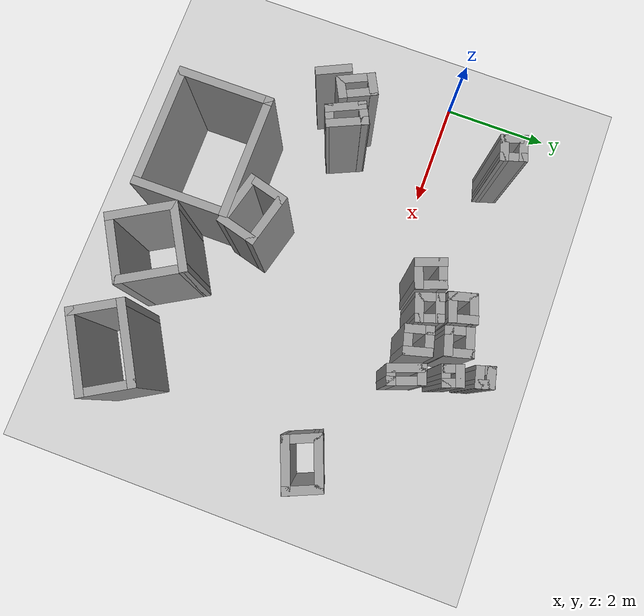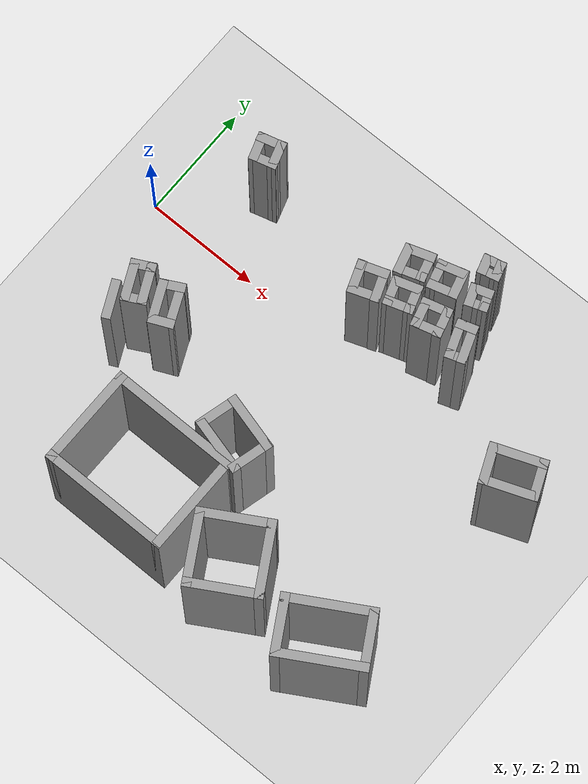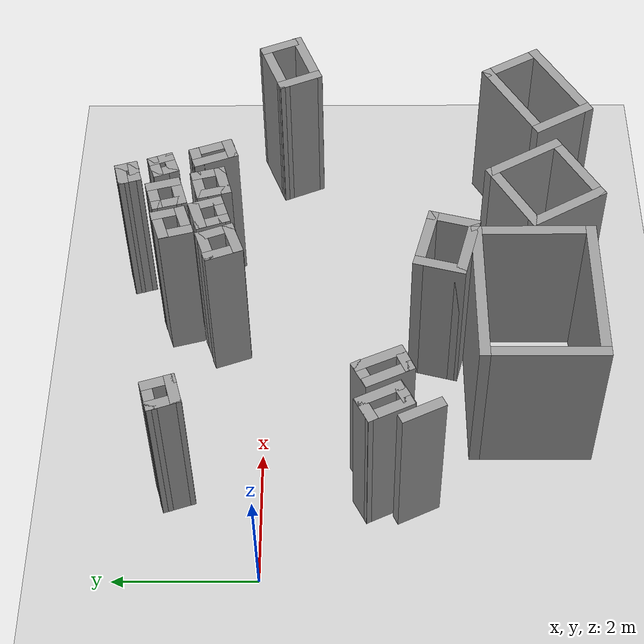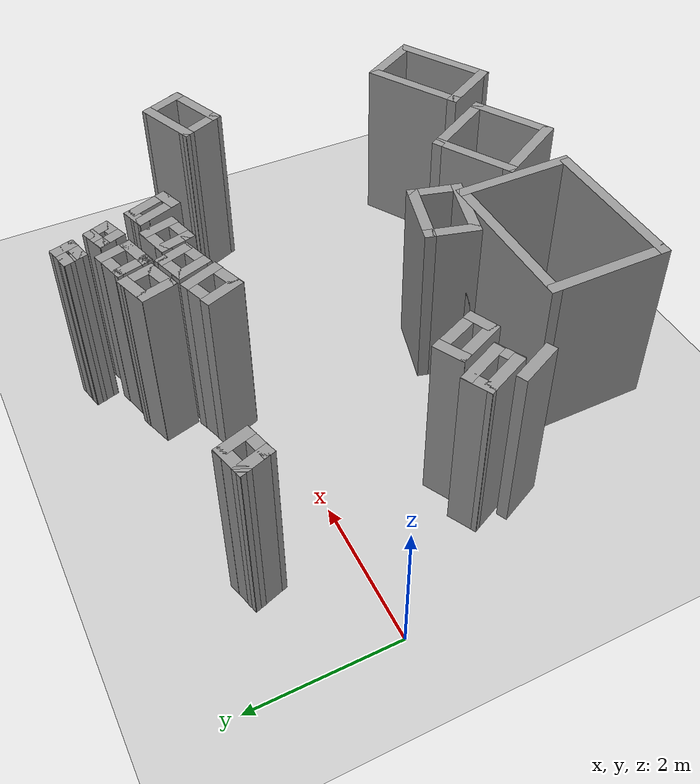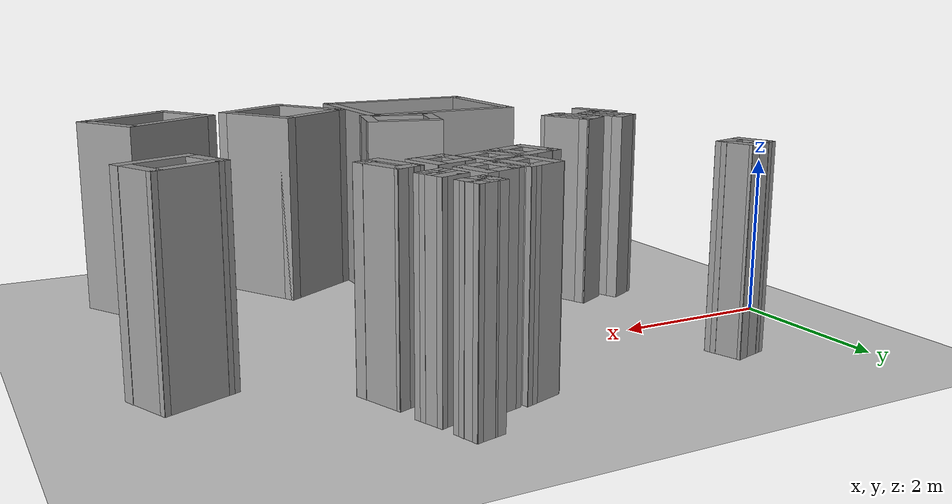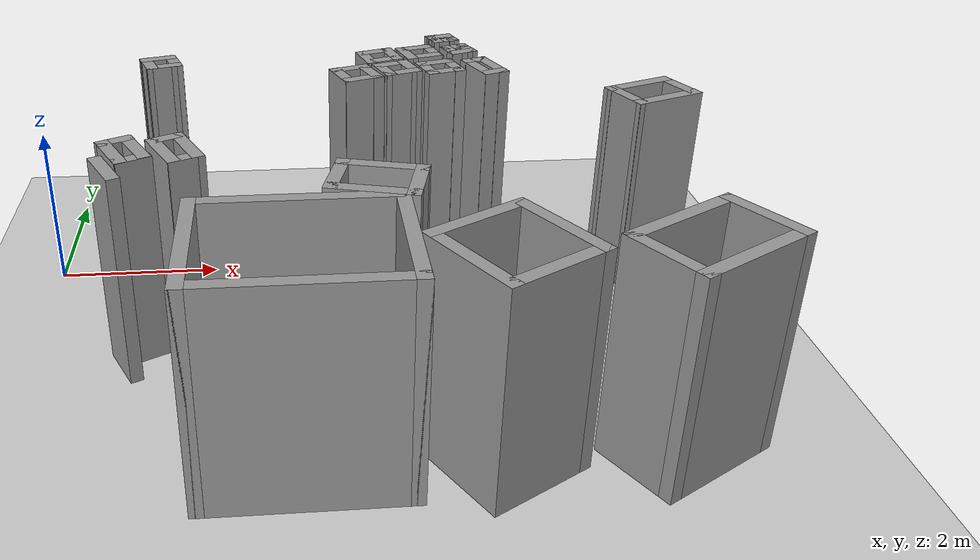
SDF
<sdf version="1.7">
 <world name="default">
  <include><uri>model://sun</uri></include>
  <include><uri>model://ground_plane</uri></include>
  <model name="iitj">
   <pose>-3.03973 -1.21048 0 0 -0 0</pose>
   <link name="Wall_244">
    <collision name="Wall_244_Collision">
     <geometry><box><size>1.75 0.15 2.5</size></box></geometry>
     <pose>0 0 1.25 0 -0 0</pose>
    </collision>
    <visual name="Wall_244_Visual">
     <pose>0 0 1.25 0 -0 0</pose>
     <geometry><box><size>1.75 0.15 2.5</size></box></geometry>
     <material>
      <script><uri>file://media/materials/scripts/gazebo.material</uri><name>Gazebo/Grey</name></script>
      <ambient>1 1 1 1</ambient>
     </material>
     <meta><layer>0</layer></meta>
    </visual>
    <pose>5.05356 -2.59994 0 0 -0 -1.5708</pose>
   </link>
   <link name="Wall_245">
    <collision name="Wall_245_Collision">
     <geometry><box><size>2.25 0.15 2.5</size></box></geometry>
     <pose>0 0 1.25 0 -0 0</pose>
    </collision>
    <visual name="Wall_245_Visual">
     <pose>0 0 1.25 0 -0 0</pose>
     <geometry><box><size>2.25 0.15 2.5</size></box></geometry>
     <material>
      <script><uri>file://media/materials/scripts/gazebo.material</uri><name>Gazebo/Grey</name></script>
      <ambient>1 1 1 1</ambient>
     </material>
     <meta><layer>0</layer></meta>
    </visual>
    <pose>6.10356 -3.39994 0 0 -0 0</pose>
   </link>
   <link name="Wall_246">
    <collision name="Wall_246_Collision">
     <geometry><box><size>1.75 0.15 2.5</size></box></geometry>
     <pose>0 0 1.25 0 -0 0</pose>
    </collision>
    <visual name="Wall_246_Visual">
     <pose>0 0 1.25 0 -0 0</pose>
     <geometry><box><size>1.75 0.15 2.5</size></box></geometry>
     <material>
      <script><uri>file://media/materials/scripts/gazebo.material</uri><name>Gazebo/Grey</name></script>
      <ambient>1 1 1 1</ambient>
     </material>
     <meta><layer>0</layer></meta>
    </visual>
    <pose>7.15356 -2.59994 0 0 -0 1.5708</pose>
   </link>
   <link name="Wall_247">
    <collision name="Wall_247_Collision">
     <geometry><box><size>2.25 0.15 2.5</size></box></geometry>
     <pose>0 0 1.25 0 -0 0</pose>
    </collision>
    <visual name="Wall_247_Visual">
     <pose>0 0 1.25 0 -0 0</pose>
     <geometry><box><size>2.25 0.15 2.5</size></box></geometry>
     <material>
      <script><uri>file://media/materials/scripts/gazebo.material</uri><name>Gazebo/Grey</name></script>
      <ambient>1 1 1 1</ambient>
     </material>
     <meta><layer>0</layer></meta>
    </visual>
    <pose>6.10356 -1.79994 0 0 -0 3.14159</pose>
   </link>
   <link name="Wall_251">
    <collision name="Wall_251_Collision">
     <geometry><box><size>1.25 0.15 2.5</size></box></geometry>
     <pose>0 0 1.25 0 -0 0</pose>
    </collision>
    <visual name="Wall_251_Visual">
     <pose>0 0 1.25 0 -0 0</pose>
     <geometry><box><size>1.25 0.15 2.5</size></box></geometry>
     <material>
      <script><uri>file://media/materials/scripts/gazebo.material</uri><name>Gazebo/Grey</name></script>
      <ambient>1 1 1 1</ambient>
     </material>
     <meta><layer>0</layer></meta>
    </visual>
    <pose>7.59722 -3.11386 0 0 -0 2.0944</pose>
   </link>
   <link name="Wall_252">
    <collision name="Wall_252_Collision">
     <geometry><box><size>1.25 0.15 2.5</size></box></geometry>
     <pose>0 0 1.25 0 -0 0</pose>
    </collision>
    <visual name="Wall_252_Visual">
     <pose>0 0 1.25 0 -0 0</pose>
     <geometry><box><size>1.25 0.15 2.5</size></box></geometry>
     <material>
      <script><uri>file://media/materials/scripts/gazebo.material</uri><name>Gazebo/Grey</name></script>
      <ambient>1 1 1 1</ambient>
     </material>
     <meta><layer>0</layer></meta>
    </visual>
    <pose>7.79854 -2.36255 0 0 -0 0.523599</pose>
   </link>
   <link name="Wall_253">
    <collision name="Wall_253_Collision">
     <geometry><box><size>1.25 0.15 2.5</size></box></geometry>
     <pose>0 0 1.25 0 -0 0</pose>
    </collision>
    <visual name="Wall_253_Visual">
     <pose>0 0 1.25 0 -0 0</pose>
     <geometry><box><size>1.25 0.15 2.5</size></box></geometry>
     <material>
      <script><uri>file://media/materials/scripts/gazebo.material</uri><name>Gazebo/Grey</name></script>
      <ambient>1 1 1 1</ambient>
     </material>
     <meta><layer>0</layer></meta>
    </visual>
    <pose>8.54985 -2.56386 0 0 -0 -1.0472</pose>
   </link>
   <link name="Wall_254">
    <collision name="Wall_254_Collision">
     <geometry><box><size>1.25 0.15 2.5</size></box></geometry>
     <pose>0 0 1.25 0 -0 0</pose>
    </collision>
    <visual name="Wall_254_Visual">
     <pose>0 0 1.25 0 -0 0</pose>
     <geometry><box><size>1.25 0.15 2.5</size></box></geometry>
     <material>
      <script><uri>file://media/materials/scripts/gazebo.material</uri><name>Gazebo/Grey</name></script>
      <ambient>1 1 1 1</ambient>
     </material>
     <meta><layer>0</layer></meta>
    </visual>
    <pose>8.34854 -3.31517 0 0 -0 -2.61799</pose>
   </link>
   <link name="Wall_256">
    <collision name="Wall_256_Collision">
     <geometry><box><size>0.75 0.15 2.5</size></box></geometry>
     <pose>0 0 1.25 0 -0 0</pose>
    </collision>
    <visual name="Wall_256_Visual">
     <pose>0 0 1.25 0 -0 0</pose>
     <geometry><box><size>0.75 0.15 2.5</size></box></geometry>
     <material>
      <script><uri>file://media/materials/scripts/gazebo.material</uri><name>Gazebo/Grey</name></script>
      <ambient>1 1 1 1</ambient>
     </material>
     <meta><layer>0</layer></meta>
    </visual>
    <pose>6.52876 -1.27215 0 0 -0 -1.8326</pose>
   </link>
   <link name="Wall_257">
    <collision name="Wall_257_Collision">
     <geometry><box><size>1 0.15 2.5</size></box></geometry>
     <pose>0 0 1.25 0 -0 0</pose>
    </collision>
    <visual name="Wall_257_Visual">
     <pose>0 0 1.25 0 -0 0</pose>
     <geometry><box><size>1 0.15 2.5</size></box></geometry>
     <material>
      <script><uri>file://media/materials/scripts/gazebo.material</uri><name>Gazebo/Grey</name></script>
      <ambient>1 1 1 1</ambient>
     </material>
     <meta><layer>0</layer></meta>
    </visual>
    <pose>6.86163 -1.67193 0 0 -0 -0.261799</pose>
   </link>
   <link name="Wall_258">
    <collision name="Wall_258_Collision">
     <geometry><box><size>0.75 0.15 2.5</size></box></geometry>
     <pose>0 0 1.25 0 -0 0</pose>
    </collision>
    <visual name="Wall_258_Visual">
     <pose>0 0 1.25 0 -0 0</pose>
     <geometry><box><size>0.75 0.15 2.5</size></box></geometry>
     <material>
      <script><uri>file://media/materials/scripts/gazebo.material</uri><name>Gazebo/Grey</name></script>
      <ambient>1 1 1 1</ambient>
     </material>
     <meta><layer>0</layer></meta>
    </visual>
    <pose>7.34979 -1.49215 0 0 -0 1.309</pose>
   </link>
   <link name="Wall_259">
    <collision name="Wall_259_Collision">
     <geometry><box><size>1 0.15 2.5</size></box></geometry>
     <pose>0 0 1.25 0 -0 0</pose>
    </collision>
    <visual name="Wall_259_Visual">
     <pose>0 0 1.25 0 -0 0</pose>
     <geometry><box><size>1 0.15 2.5</size></box></geometry>
     <material>
      <script><uri>file://media/materials/scripts/gazebo.material</uri><name>Gazebo/Grey</name></script>
      <ambient>1 1 1 1</ambient>
     </material>
     <meta><layer>0</layer></meta>
    </visual>
    <pose>7.01692 -1.09237 0 0 -0 2.87979</pose>
   </link>
   <link name="Wall_261">
    <collision name="Wall_261_Collision">
     <geometry><box><size>1 0.15 2.5</size></box></geometry>
     <pose>0 0 1.25 0 -0 0</pose>
    </collision>
    <visual name="Wall_261_Visual">
     <pose>0 0 1.25 0 -0 0</pose>
     <geometry><box><size>1 0.15 2.5</size></box></geometry>
     <material>
      <script><uri>file://media/materials/scripts/gazebo.material</uri><name>Gazebo/Grey</name></script>
      <ambient>1 1 1 1</ambient>
     </material>
     <meta><layer>0</layer></meta>
    </visual>
    <pose>9.35524 -3.19576 0 0 -0 2.0944</pose>
   </link>
   <link name="Wall_262">
    <collision name="Wall_262_Collision">
     <geometry><box><size>1.5 0.15 2.5</size></box></geometry>
     <pose>0 0 1.25 0 -0 0</pose>
    </collision>
    <visual name="Wall_262_Visual">
     <pose>0 0 1.25 0 -0 0</pose>
     <geometry><box><size>1.5 0.15 2.5</size></box></geometry>
     <material>
      <script><uri>file://media/materials/scripts/gazebo.material</uri><name>Gazebo/Grey</name></script>
      <ambient>1 1 1 1</ambient>
     </material>
     <meta><layer>0</layer></meta>
    </visual>
    <pose>9.72731 -2.4902 0 0 -0 0.523599</pose>
   </link>
   <link name="Wall_263">
    <collision name="Wall_263_Collision">
     <geometry><box><size>1 0.15 2.5</size></box></geometry>
     <pose>0 0 1.25 0 -0 0</pose>
    </collision>
    <visual name="Wall_263_Visual">
     <pose>0 0 1.25 0 -0 0</pose>
     <geometry><box><size>1 0.15 2.5</size></box></geometry>
     <material>
      <script><uri>file://media/materials/scripts/gazebo.material</uri><name>Gazebo/Grey</name></script>
      <ambient>1 1 1 1</ambient>
     </material>
     <meta><layer>0</layer></meta>
    </visual>
    <pose>10.5244 -2.52076 0 0 -0 -1.0472</pose>
   </link>
   <link name="Wall_264">
    <collision name="Wall_264_Collision">
     <geometry><box><size>1.5 0.15 2.5</size></box></geometry>
     <pose>0 0 1.25 0 -0 0</pose>
    </collision>
    <visual name="Wall_264_Visual">
     <pose>0 0 1.25 0 -0 0</pose>
     <geometry><box><size>1.5 0.15 2.5</size></box></geometry>
     <material>
      <script><uri>file://media/materials/scripts/gazebo.material</uri><name>Gazebo/Grey</name></script>
      <ambient>1 1 1 1</ambient>
     </material>
     <meta><layer>0</layer></meta>
    </visual>
    <pose>10.1523 -3.22632 0 0 -0 -2.61799</pose>
   </link>
   <link name="Wall_460">
    <collision name="Wall_460_Collision">
     <geometry><box><size>0.645945 0.15 2.5</size></box></geometry>
     <pose>0 0 1.25 0 -0 0</pose>
    </collision>
    <visual name="Wall_460_Visual">
     <pose>0 0 1.25 0 -0 0</pose>
     <geometry><box><size>0.645945 0.15 2.5</size></box></geometry>
     <material>
      <script><uri>file://media/materials/scripts/gazebo.material</uri><name>Gazebo/Grey</name></script>
      <ambient>1 1 1 1</ambient>
     </material>
     <meta><layer>0</layer></meta>
    </visual>
    <pose>4.12487 -0.949881 0 0 -0 2.01401</pose>
   </link>
   <link name="Wall_463">
    <collision name="Wall_463_Collision">
     <geometry><box><size>0.683665 0.15 2.5</size></box></geometry>
     <pose>0 0 1.25 0 -0 0</pose>
    </collision>
    <visual name="Wall_463_Visual">
     <pose>0 0 1.25 0 -0 0</pose>
     <geometry><box><size>0.683665 0.15 2.5</size></box></geometry>
     <material>
      <script><uri>file://media/materials/scripts/gazebo.material</uri><name>Gazebo/Grey</name></script>
      <ambient>1 1 1 1</ambient>
     </material>
     <meta><layer>0</layer></meta>
    </visual>
    <pose>4.14483 -0.530254 0 0 -0 -1.13173</pose>
   </link>
   <link name="Wall_464">
    <collision name="Wall_464_Collision">
     <geometry><box><size>0.417639 0.15 2.5</size></box></geometry>
     <pose>0 0 1.25 0 -0 0</pose>
    </collision>
    <visual name="Wall_464_Visual">
     <pose>0 0 1.25 0 -0 0</pose>
     <geometry><box><size>0.417639 0.15 2.5</size></box></geometry>
     <material>
      <script><uri>file://media/materials/scripts/gazebo.material</uri><name>Gazebo/Grey</name></script>
      <ambient>1 1 1 1</ambient>
     </material>
     <meta><layer>0</layer></meta>
    </visual>
    <pose>4.38422 -0.717189 0 0 -0 0.480895</pose>
   </link>
   <link name="Wall_465">
    <collision name="Wall_465_Collision">
     <geometry><box><size>0.677054 0.15 2.5</size></box></geometry>
     <pose>0 0 1.25 0 -0 0</pose>
    </collision>
    <visual name="Wall_465_Visual">
     <pose>0 0 1.25 0 -0 0</pose>
     <geometry><box><size>0.677054 0.15 2.5</size></box></geometry>
     <material>
      <script><uri>file://media/materials/scripts/gazebo.material</uri><name>Gazebo/Grey</name></script>
      <ambient>1 1 1 1</ambient>
     </material>
     <meta><layer>0</layer></meta>
    </visual>
    <pose>4.38211 -0.410108 0 0 -0 2.01577</pose>
   </link>
   <link name="Wall_466">
    <collision name="Wall_466_Collision">
     <geometry><box><size>0.417639 0.15 2.5</size></box></geometry>
     <pose>0 0 1.25 0 -0 0</pose>
    </collision>
    <visual name="Wall_466_Visual">
     <pose>0 0 1.25 0 -0 0</pose>
     <geometry><box><size>0.417639 0.15 2.5</size></box></geometry>
     <material>
      <script><uri>file://media/materials/scripts/gazebo.material</uri><name>Gazebo/Grey</name></script>
      <ambient>1 1 1 1</ambient>
     </material>
     <meta><layer>0</layer></meta>
    </visual>
    <pose>4.15004 -0.22683 0 0 -0 -2.6607</pose>
   </link>
   <link name="Wall_468">
    <collision name="Wall_468_Collision">
     <geometry><box><size>0.722989 0.15 2.5</size></box></geometry>
     <pose>0 0 1.25 0 -0 0</pose>
    </collision>
    <visual name="Wall_468_Visual">
     <pose>0 0 1.25 0 -0 0</pose>
     <geometry><box><size>0.722989 0.15 2.5</size></box></geometry>
     <material>
      <script><uri>file://media/materials/scripts/gazebo.material</uri><name>Gazebo/Grey</name></script>
      <ambient>1 1 1 1</ambient>
     </material>
     <meta><layer>0</layer></meta>
    </visual>
    <pose>4.69337 -0.526597 0 0 -0 -1.13575</pose>
   </link>
   <link name="Wall_469">
    <collision name="Wall_469_Collision">
     <geometry><box><size>0.417856 0.15 2.5</size></box></geometry>
     <pose>0 0 1.25 0 -0 0</pose>
    </collision>
    <visual name="Wall_469_Visual">
     <pose>0 0 1.25 0 -0 0</pose>
     <geometry><box><size>0.417856 0.15 2.5</size></box></geometry>
     <material>
      <script><uri>file://media/materials/scripts/gazebo.material</uri><name>Gazebo/Grey</name></script>
      <ambient>1 1 1 1</ambient>
     </material>
     <meta><layer>0</layer></meta>
    </visual>
    <pose>4.94373 -0.731817 0 0 -0 0.41981</pose>
   </link>
   <link name="Wall_470">
    <collision name="Wall_470_Collision">
     <geometry><box><size>0.742959 0.15 2.5</size></box></geometry>
     <pose>0 0 1.25 0 -0 0</pose>
    </collision>
    <visual name="Wall_470_Visual">
     <pose>0 0 1.25 0 -0 0</pose>
     <geometry><box><size>0.742959 0.15 2.5</size></box></geometry>
     <material>
      <script><uri>file://media/materials/scripts/gazebo.material</uri><name>Gazebo/Grey</name></script>
      <ambient>1 1 1 1</ambient>
     </material>
     <meta><layer>0</layer></meta>
    </visual>
    <pose>4.94529 -0.406451 0 0 -0 1.99025</pose>
   </link>
   <link name="Wall_471">
    <collision name="Wall_471_Collision">
     <geometry><box><size>0.433991 0.15 2.5</size></box></geometry>
     <pose>0 0 1.25 0 -0 0</pose>
    </collision>
    <visual name="Wall_471_Visual">
     <pose>0 0 1.25 0 -0 0</pose>
     <geometry><box><size>0.433991 0.15 2.5</size></box></geometry>
     <material>
      <script><uri>file://media/materials/scripts/gazebo.material</uri><name>Gazebo/Grey</name></script>
      <ambient>1 1 1 1</ambient>
     </material>
     <meta><layer>0</layer></meta>
    </visual>
    <pose>4.69858 -0.193917 0 0 -0 -2.66169</pose>
   </link>
   <link name="Wall_473">
    <collision name="Wall_473_Collision">
     <geometry><box><size>0.473709 0.15 2.5</size></box></geometry>
     <pose>0 0 1.25 0 -0 0</pose>
    </collision>
    <visual name="Wall_473_Visual">
     <pose>0 0 1.25 0 -0 0</pose>
     <geometry><box><size>0.473709 0.15 2.5</size></box></geometry>
     <material>
      <script><uri>file://media/materials/scripts/gazebo.material</uri><name>Gazebo/Grey</name></script>
      <ambient>1 1 1 1</ambient>
     </material>
     <meta><layer>0</layer></meta>
    </visual>
    <pose>4.25891 2.37297 0 0 -0 1.89361</pose>
   </link>
   <link name="Wall_474">
    <collision name="Wall_474_Collision">
     <geometry><box><size>0.472775 0.15 2.5</size></box></geometry>
     <pose>0 0 1.25 0 -0 0</pose>
    </collision>
    <visual name="Wall_474_Visual">
     <pose>0 0 1.25 0 -0 0</pose>
     <geometry><box><size>0.472775 0.15 2.5</size></box></geometry>
     <material>
      <script><uri>file://media/materials/scripts/gazebo.material</uri><name>Gazebo/Grey</name></script>
      <ambient>1 1 1 1</ambient>
     </material>
     <meta><layer>0</layer></meta>
    </visual>
    <pose>4.36345 2.56825 0 0 -0 0.261873</pose>
   </link>
   <link name="Wall_475">
    <collision name="Wall_475_Collision">
     <geometry><box><size>0.476783 0.15 2.5</size></box></geometry>
     <pose>0 0 1.25 0 -0 0</pose>
    </collision>
    <visual name="Wall_475_Visual">
     <pose>0 0 1.25 0 -0 0</pose>
     <geometry><box><size>0.476783 0.15 2.5</size></box></geometry>
     <material>
      <script><uri>file://media/materials/scripts/gazebo.material</uri><name>Gazebo/Grey</name></script>
      <ambient>1 1 1 1</ambient>
     </material>
     <meta><layer>0</layer></meta>
    </visual>
    <pose>4.56829 2.45893 0 0 -0 -1.26651</pose>
   </link>
   <link name="Wall_476">
    <collision name="Wall_476_Collision">
     <geometry><box><size>0.468159 0.15 2.5</size></box></geometry>
     <pose>0 0 1.25 0 -0 0</pose>
    </collision>
    <visual name="Wall_476_Visual">
     <pose>0 0 1.25 0 -0 0</pose>
     <geometry><box><size>0.468159 0.15 2.5</size></box></geometry>
     <material>
      <script><uri>file://media/materials/scripts/gazebo.material</uri><name>Gazebo/Grey</name></script>
      <ambient>1 1 1 1</ambient>
     </material>
     <meta><layer>0</layer></meta>
    </visual>
    <pose>4.46375 2.26126 0 0 -0 -2.87583</pose>
   </link>
   <link name="Wall_478">
    <collision name="Wall_478_Collision">
     <geometry><box><size>0.555812 0.15 2.5</size></box></geometry>
     <pose>0 0 1.25 0 -0 0</pose>
    </collision>
    <visual name="Wall_478_Visual">
     <pose>0 0 1.25 0 -0 0</pose>
     <geometry><box><size>0.555812 0.15 2.5</size></box></geometry>
     <material>
      <script><uri>file://media/materials/scripts/gazebo.material</uri><name>Gazebo/Grey</name></script>
      <ambient>1 1 1 1</ambient>
     </material>
     <meta><layer>0</layer></meta>
    </visual>
    <pose>6.76952 1.72536 0 0 -0 -1.22087</pose>
   </link>
   <link name="Wall_479">
    <collision name="Wall_479_Collision">
     <geometry><box><size>0.526784 0.15 2.5</size></box></geometry>
     <pose>0 0 1.25 0 -0 0</pose>
    </collision>
    <visual name="Wall_479_Visual">
     <pose>0 0 1.25 0 -0 0</pose>
     <geometry><box><size>0.526784 0.15 2.5</size></box></geometry>
     <material>
      <script><uri>file://media/materials/scripts/gazebo.material</uri><name>Gazebo/Grey</name></script>
      <ambient>1 1 1 1</ambient>
     </material>
     <meta><layer>0</layer></meta>
    </visual>
    <pose>7.02161 1.59353 0 0 -0 0.34757</pose>
   </link>
   <link name="Wall_480">
    <collision name="Wall_480_Collision">
     <geometry><box><size>0.557692 0.15 2.5</size></box></geometry>
     <pose>0 0 1.25 0 -0 0</pose>
    </collision>
    <visual name="Wall_480_Visual">
     <pose>0 0 1.25 0 -0 0</pose>
     <geometry><box><size>0.557692 0.15 2.5</size></box></geometry>
     <material>
      <script><uri>file://media/materials/scripts/gazebo.material</uri><name>Gazebo/Grey</name></script>
      <ambient>1 1 1 1</ambient>
     </material>
     <meta><layer>0</layer></meta>
    </visual>
    <pose>7.13187 1.84291 0 0 -0 1.93315</pose>
   </link>
   <link name="Wall_481">
    <collision name="Wall_481_Collision">
     <geometry><box><size>0.53008 0.15 2.5</size></box></geometry>
     <pose>0 0 1.25 0 -0 0</pose>
    </collision>
    <visual name="Wall_481_Visual">
     <pose>0 0 1.25 0 -0 0</pose>
     <geometry><box><size>0.53008 0.15 2.5</size></box></geometry>
     <material>
      <script><uri>file://media/materials/scripts/gazebo.material</uri><name>Gazebo/Grey</name></script>
      <ambient>1 1 1 1</ambient>
     </material>
     <meta><layer>0</layer></meta>
    </visual>
    <pose>6.88518 1.97205 0 0 -0 -2.8122</pose>
   </link>
   <link name="Wall_483">
    <collision name="Wall_483_Collision">
     <geometry><box><size>0.501079 0.15 2.5</size></box></geometry>
     <pose>0 0 1.25 0 -0 0</pose>
    </collision>
    <visual name="Wall_483_Visual">
     <pose>0 0 1.25 0 -0 0</pose>
     <geometry><box><size>0.501079 0.15 2.5</size></box></geometry>
     <material>
      <script><uri>file://media/materials/scripts/gazebo.material</uri><name>Gazebo/Grey</name></script>
      <ambient>1 1 1 1</ambient>
     </material>
     <meta><layer>0</layer></meta>
    </visual>
    <pose>7.32712 1.8962 0 0 -0 -1.24563</pose>
   </link>
   <link name="Wall_484">
    <collision name="Wall_484_Collision">
     <geometry><box><size>0.499393 0.15 2.5</size></box></geometry>
     <pose>0 0 1.25 0 -0 0</pose>
    </collision>
    <visual name="Wall_484_Visual">
     <pose>0 0 1.25 0 -0 0</pose>
     <geometry><box><size>0.499393 0.15 2.5</size></box></geometry>
     <material>
      <script><uri>file://media/materials/scripts/gazebo.material</uri><name>Gazebo/Grey</name></script>
      <ambient>1 1 1 1</ambient>
     </material>
     <meta><layer>0</layer></meta>
    </visual>
    <pose>7.54954 1.78324 0 0 -0 0.310542</pose>
   </link>
   <link name="Wall_485">
    <collision name="Wall_485_Collision">
     <geometry><box><size>0.494262 0.15 2.5</size></box></geometry>
     <pose>0 0 1.25 0 -0 0</pose>
    </collision>
    <visual name="Wall_485_Visual">
     <pose>0 0 1.25 0 -0 0</pose>
     <geometry><box><size>0.494262 0.15 2.5</size></box></geometry>
     <material>
      <script><uri>file://media/materials/scripts/gazebo.material</uri><name>Gazebo/Grey</name></script>
      <ambient>1 1 1 1</ambient>
     </material>
     <meta><layer>0</layer></meta>
    </visual>
    <pose>7.66249 2.00027 0 0 -0 1.88613</pose>
   </link>
   <link name="Wall_486">
    <collision name="Wall_486_Collision">
     <geometry><box><size>0.499393 0.15 2.5</size></box></geometry>
     <pose>0 0 1.25 0 -0 0</pose>
    </collision>
    <visual name="Wall_486_Visual">
     <pose>0 0 1.25 0 -0 0</pose>
     <geometry><box><size>0.499393 0.15 2.5</size></box></geometry>
     <material>
      <script><uri>file://media/materials/scripts/gazebo.material</uri><name>Gazebo/Grey</name></script>
      <ambient>1 1 1 1</ambient>
     </material>
     <meta><layer>0</layer></meta>
    </visual>
    <pose>7.44277 2.11053 0 0 -0 -2.83105</pose>
   </link>
   <link name="Wall_488">
    <collision name="Wall_488_Collision">
     <geometry><box><size>0.5 0.15 2.5</size></box></geometry>
     <pose>0 0 1.25 0 -0 0</pose>
    </collision>
    <visual name="Wall_488_Visual">
     <pose>0 0 1.25 0 -0 0</pose>
     <geometry><box><size>0.5 0.15 2.5</size></box></geometry>
     <material>
      <script><uri>file://media/materials/scripts/gazebo.material</uri><name>Gazebo/Grey</name></script>
      <ambient>1 1 1 1</ambient>
     </material>
     <meta><layer>0</layer></meta>
    </visual>
    <pose>7.88784 1.90861 0 0 -0 -1.309</pose>
   </link>
   <link name="Wall_489">
    <collision name="Wall_489_Collision">
     <geometry><box><size>0.511822 0.15 2.5</size></box></geometry>
     <pose>0 0 1.25 0 -0 0</pose>
    </collision>
    <visual name="Wall_489_Visual">
     <pose>0 0 1.25 0 -0 0</pose>
     <geometry><box><size>0.511822 0.15 2.5</size></box></geometry>
     <material>
      <script><uri>file://media/materials/scripts/gazebo.material</uri><name>Gazebo/Grey</name></script>
      <ambient>1 1 1 1</ambient>
     </material>
     <meta><layer>0</layer></meta>
    </visual>
    <pose>8.10756 1.78217 0 0 -0 0.268481</pose>
   </link>
   <link name="Wall_490">
    <collision name="Wall_490_Collision">
     <geometry><box><size>0.5 0.15 2.5</size></box></geometry>
     <pose>0 0 1.25 0 -0 0</pose>
    </collision>
    <visual name="Wall_490_Visual">
     <pose>0 0 1.25 0 -0 0</pose>
     <geometry><box><size>0.5 0.15 2.5</size></box></geometry>
     <material>
      <script><uri>file://media/materials/scripts/gazebo.material</uri><name>Gazebo/Grey</name></script>
      <ambient>1 1 1 1</ambient>
     </material>
     <meta><layer>0</layer></meta>
    </visual>
    <pose>8.24209 1.9938 0 0 -0 1.8326</pose>
   </link>
   <link name="Wall_491">
    <collision name="Wall_491_Collision">
     <geometry><box><size>0.511822 0.15 2.5</size></box></geometry>
     <pose>0 0 1.25 0 -0 0</pose>
    </collision>
    <visual name="Wall_491_Visual">
     <pose>0 0 1.25 0 -0 0</pose>
     <geometry><box><size>0.511822 0.15 2.5</size></box></geometry>
     <material>
      <script><uri>file://media/materials/scripts/gazebo.material</uri><name>Gazebo/Grey</name></script>
      <ambient>1 1 1 1</ambient>
     </material>
     <meta><layer>0</layer></meta>
    </visual>
    <pose>8.01697 2.12024 0 0 -0 -2.87311</pose>
   </link>
   <link name="Wall_493">
    <collision name="Wall_493_Collision">
     <geometry><box><size>0.5 0.15 2.5</size></box></geometry>
     <pose>0 0 1.25 0 -0 0</pose>
    </collision>
    <visual name="Wall_493_Visual">
     <pose>0 0 1.25 0 -0 0</pose>
     <geometry><box><size>0.5 0.15 2.5</size></box></geometry>
     <material>
      <script><uri>file://media/materials/scripts/gazebo.material</uri><name>Gazebo/Grey</name></script>
      <ambient>1 1 1 1</ambient>
     </material>
     <meta><layer>0</layer></meta>
    </visual>
    <pose>7.68829 2.52881 0 0 -0 -1.309</pose>
   </link>
   <link name="Wall_494">
    <collision name="Wall_494_Collision">
     <geometry><box><size>0.501434 0.15 2.5</size></box></geometry>
     <pose>0 0 1.25 0 -0 0</pose>
    </collision>
    <visual name="Wall_494_Visual">
     <pose>0 0 1.25 0 -0 0</pose>
     <geometry><box><size>0.501434 0.15 2.5</size></box></geometry>
     <material>
      <script><uri>file://media/materials/scripts/gazebo.material</uri><name>Gazebo/Grey</name></script>
      <ambient>1 1 1 1</ambient>
     </material>
     <meta><layer>0</layer></meta>
    </visual>
    <pose>7.90262 2.40776 0 0 -0 0.276623</pose>
   </link>
   <link name="Wall_495">
    <collision name="Wall_495_Collision">
     <geometry><box><size>0.5 0.15 2.5</size></box></geometry>
     <pose>0 0 1.25 0 -0 0</pose>
    </collision>
    <visual name="Wall_495_Visual">
     <pose>0 0 1.25 0 -0 0</pose>
     <geometry><box><size>0.5 0.15 2.5</size></box></geometry>
     <material>
      <script><uri>file://media/materials/scripts/gazebo.material</uri><name>Gazebo/Grey</name></script>
      <ambient>1 1 1 1</ambient>
     </material>
     <meta><layer>0</layer></meta>
    </visual>
    <pose>8.03715 2.63018 0 0 -0 1.8326</pose>
   </link>
   <link name="Wall_496">
    <collision name="Wall_496_Collision">
     <geometry><box><size>0.501434 0.15 2.5</size></box></geometry>
     <pose>0 0 1.25 0 -0 0</pose>
    </collision>
    <visual name="Wall_496_Visual">
     <pose>0 0 1.25 0 -0 0</pose>
     <geometry><box><size>0.501434 0.15 2.5</size></box></geometry>
     <material>
      <script><uri>file://media/materials/scripts/gazebo.material</uri><name>Gazebo/Grey</name></script>
      <ambient>1 1 1 1</ambient>
     </material>
     <meta><layer>0</layer></meta>
    </visual>
    <pose>7.81204 2.74584 0 0 -0 -2.86497</pose>
   </link>
   <link name="Wall_498">
    <collision name="Wall_498_Collision">
     <geometry><box><size>0.5 0.15 2.5</size></box></geometry>
     <pose>0 0 1.25 0 -0 0</pose>
    </collision>
    <visual name="Wall_498_Visual">
     <pose>0 0 1.25 0 -0 0</pose>
     <geometry><box><size>0.5 0.15 2.5</size></box></geometry>
     <material>
      <script><uri>file://media/materials/scripts/gazebo.material</uri><name>Gazebo/Grey</name></script>
      <ambient>1 1 1 1</ambient>
     </material>
     <meta><layer>0</layer></meta>
    </visual>
    <pose>7.1382 2.40477 0 0 -0 -1.309</pose>
   </link>
   <link name="Wall_499">
    <collision name="Wall_499_Collision">
     <geometry><box><size>0.511316 0.15 2.5</size></box></geometry>
     <pose>0 0 1.25 0 -0 0</pose>
    </collision>
    <visual name="Wall_499_Visual">
     <pose>0 0 1.25 0 -0 0</pose>
     <geometry><box><size>0.511316 0.15 2.5</size></box></geometry>
     <material>
      <script><uri>file://media/materials/scripts/gazebo.material</uri><name>Gazebo/Grey</name></script>
      <ambient>1 1 1 1</ambient>
     </material>
     <meta><layer>0</layer></meta>
    </visual>
    <pose>7.36062 2.2972 0 0 -0 0.315632</pose>
   </link>
   <link name="Wall_500">
    <collision name="Wall_500_Collision">
     <geometry><box><size>0.5 0.15 2.5</size></box></geometry>
     <pose>0 0 1.25 0 -0 0</pose>
    </collision>
    <visual name="Wall_500_Visual">
     <pose>0 0 1.25 0 -0 0</pose>
     <geometry><box><size>0.5 0.15 2.5</size></box></geometry>
     <material>
      <script><uri>file://media/materials/scripts/gazebo.material</uri><name>Gazebo/Grey</name></script>
      <ambient>1 1 1 1</ambient>
     </material>
     <meta><layer>0</layer></meta>
    </visual>
    <pose>7.48706 2.52232 0 0 -0 1.8326</pose>
   </link>
   <link name="Wall_501">
    <collision name="Wall_501_Collision">
     <geometry><box><size>0.511316 0.15 2.5</size></box></geometry>
     <pose>0 0 1.25 0 -0 0</pose>
    </collision>
    <visual name="Wall_501_Visual">
     <pose>0 0 1.25 0 -0 0</pose>
     <geometry><box><size>0.511316 0.15 2.5</size></box></geometry>
     <material>
      <script><uri>file://media/materials/scripts/gazebo.material</uri><name>Gazebo/Grey</name></script>
      <ambient>1 1 1 1</ambient>
     </material>
     <meta><layer>0</layer></meta>
    </visual>
    <pose>7.27004 2.63528 0 0 -0 -2.82596</pose>
   </link>
   <link name="Wall_503">
    <collision name="Wall_503_Collision">
     <geometry><box><size>0.330781 0.15 2.5</size></box></geometry>
     <pose>0 0 1.25 0 -0 0</pose>
    </collision>
    <visual name="Wall_503_Visual">
     <pose>0 0 1.25 0 -0 0</pose>
     <geometry><box><size>0.330781 0.15 2.5</size></box></geometry>
     <material>
      <script><uri>file://media/materials/scripts/gazebo.material</uri><name>Gazebo/Grey</name></script>
      <ambient>1 1 1 1</ambient>
     </material>
     <meta><layer>0</layer></meta>
    </visual>
    <pose>8.15241 3.12475 0 0 -0 -1.27231</pose>
   </link>
   <link name="Wall_504">
    <collision name="Wall_504_Collision">
     <geometry><box><size>0.375911 0.15 2.5</size></box></geometry>
     <pose>0 0 1.25 0 -0 0</pose>
    </collision>
    <visual name="Wall_504_Visual">
     <pose>0 0 1.25 0 -0 0</pose>
     <geometry><box><size>0.375911 0.15 2.5</size></box></geometry>
     <material>
      <script><uri>file://media/materials/scripts/gazebo.material</uri><name>Gazebo/Grey</name></script>
      <ambient>1 1 1 1</ambient>
     </material>
     <meta><layer>0</layer></meta>
    </visual>
    <pose>8.28877 3.06494 0 0 -0 0.237556</pose>
   </link>
   <link name="Wall_505">
    <collision name="Wall_505_Collision">
     <geometry><box><size>0.330781 0.15 2.5</size></box></geometry>
     <pose>0 0 1.25 0 -0 0</pose>
    </collision>
    <visual name="Wall_505_Visual">
     <pose>0 0 1.25 0 -0 0</pose>
     <geometry><box><size>0.330781 0.15 2.5</size></box></geometry>
     <material>
      <script><uri>file://media/materials/scripts/gazebo.material</uri><name>Gazebo/Grey</name></script>
      <ambient>1 1 1 1</ambient>
     </material>
     <meta><layer>0</layer></meta>
    </visual>
    <pose>8.37197 3.17791 0 0 -0 1.86928</pose>
   </link>
   <link name="Wall_506">
    <collision name="Wall_506_Collision">
     <geometry><box><size>0.375198 0.15 2.5</size></box></geometry>
     <pose>0 0 1.25 0 -0 0</pose>
    </collision>
    <visual name="Wall_506_Visual">
     <pose>0 0 1.25 0 -0 0</pose>
     <geometry><box><size>0.375198 0.15 2.5</size></box></geometry>
     <material>
      <script><uri>file://media/materials/scripts/gazebo.material</uri><name>Gazebo/Grey</name></script>
      <ambient>1 1 1 1</ambient>
     </material>
     <meta><layer>0</layer></meta>
    </visual>
    <pose>8.23561 3.23929 0 0 -0 -2.9175</pose>
   </link>
   <link name="Wall_508">
    <collision name="Wall_508_Collision">
     <geometry><box><size>0.377778 0.15 2.5</size></box></geometry>
     <pose>0 0 1.25 0 -0 0</pose>
    </collision>
    <visual name="Wall_508_Visual">
     <pose>0 0 1.25 0 -0 0</pose>
     <geometry><box><size>0.377778 0.15 2.5</size></box></geometry>
     <material>
      <script><uri>file://media/materials/scripts/gazebo.material</uri><name>Gazebo/Grey</name></script>
      <ambient>1 1 1 1</ambient>
     </material>
     <meta><layer>0</layer></meta>
    </visual>
    <pose>8.30673 2.61664 0 0 -0 -1.22191</pose>
   </link>
   <link name="Wall_509">
    <collision name="Wall_509_Collision">
     <geometry><box><size>0.386766 0.15 2.5</size></box></geometry>
     <pose>0 0 1.25 0 -0 0</pose>
    </collision>
    <visual name="Wall_509_Visual">
     <pose>0 0 1.25 0 -0 0</pose>
     <geometry><box><size>0.386766 0.15 2.5</size></box></geometry>
     <material>
      <script><uri>file://media/materials/scripts/gazebo.material</uri><name>Gazebo/Grey</name></script>
      <ambient>1 1 1 1</ambient>
     </material>
     <meta><layer>0</layer></meta>
    </visual>
    <pose>8.45428 2.54854 0 0 -0 0.335114</pose>
   </link>
   <link name="Wall_510">
    <collision name="Wall_510_Collision">
     <geometry><box><size>0.377778 0.15 2.5</size></box></geometry>
     <pose>0 0 1.25 0 -0 0</pose>
    </collision>
    <visual name="Wall_510_Visual">
     <pose>0 0 1.25 0 -0 0</pose>
     <geometry><box><size>0.377778 0.15 2.5</size></box></geometry>
     <material>
      <script><uri>file://media/materials/scripts/gazebo.material</uri><name>Gazebo/Grey</name></script>
      <ambient>1 1 1 1</ambient>
     </material>
     <meta><layer>0</layer></meta>
    </visual>
    <pose>8.52714 2.69451 0 0 -0 1.91969</pose>
   </link>
   <link name="Wall_511">
    <collision name="Wall_511_Collision">
     <geometry><box><size>0.378702 0.15 2.5</size></box></geometry>
     <pose>0 0 1.25 0 -0 0</pose>
    </collision>
    <visual name="Wall_511_Visual">
     <pose>0 0 1.25 0 -0 0</pose>
     <geometry><box><size>0.378702 0.15 2.5</size></box></geometry>
     <material>
      <script><uri>file://media/materials/scripts/gazebo.material</uri><name>Gazebo/Grey</name></script>
      <ambient>1 1 1 1</ambient>
     </material>
     <meta><layer>0</layer></meta>
    </visual>
    <pose>8.37959 2.76578 0 0 -0 -2.8236</pose>
   </link>
   <link name="Wall_513">
    <collision name="Wall_513_Collision">
     <geometry><box><size>0.656625 0.15 2.5</size></box></geometry>
     <pose>0 0 1.25 0 -0 0</pose>
    </collision>
    <visual name="Wall_513_Visual">
     <pose>0 0 1.25 0 -0 0</pose>
     <geometry><box><size>0.656625 0.15 2.5</size></box></geometry>
     <material>
      <script><uri>file://media/materials/scripts/gazebo.material</uri><name>Gazebo/Grey</name></script>
      <ambient>1 1 1 1</ambient>
     </material>
     <meta><layer>0</layer></meta>
    </visual>
    <pose>8.55315 1.91227 0 0 -0 -1.2186</pose>
   </link>
   <link name="Wall_514">
    <collision name="Wall_514_Collision">
     <geometry><box><size>0.350424 0.15 2.5</size></box></geometry>
     <pose>0 0 1.25 0 -0 0</pose>
    </collision>
    <visual name="Wall_514_Visual">
     <pose>0 0 1.25 0 -0 0</pose>
     <geometry><box><size>0.350424 0.15 2.5</size></box></geometry>
     <material>
      <script><uri>file://media/materials/scripts/gazebo.material</uri><name>Gazebo/Grey</name></script>
      <ambient>1 1 1 1</ambient>
     </material>
     <meta><layer>0</layer></meta>
    </visual>
    <pose>8.7393 1.70761 0 0 -0 0.336745</pose>
   </link>
   <link name="Wall_515">
    <collision name="Wall_515_Collision">
     <geometry><box><size>0.655383 0.15 2.5</size></box></geometry>
     <pose>0 0 1.25 0 -0 0</pose>
    </collision>
    <visual name="Wall_515_Visual">
     <pose>0 0 1.25 0 -0 0</pose>
     <geometry><box><size>0.655383 0.15 2.5</size></box></geometry>
     <material>
      <script><uri>file://media/materials/scripts/gazebo.material</uri><name>Gazebo/Grey</name></script>
      <ambient>1 1 1 1</ambient>
     </material>
     <meta><layer>0</layer></meta>
    </visual>
    <pose>8.74832 1.97431 0 0 -0 1.91624</pose>
   </link>
   <link name="Wall_516">
    <collision name="Wall_516_Collision">
     <geometry><box><size>0.351455 0.15 2.5</size></box></geometry>
     <pose>0 0 1.25 0 -0 0</pose>
    </collision>
    <visual name="Wall_516_Visual">
     <pose>0 0 1.25 0 -0 0</pose>
     <geometry><box><size>0.351455 0.15 2.5</size></box></geometry>
     <material>
      <script><uri>file://media/materials/scripts/gazebo.material</uri><name>Gazebo/Grey</name></script>
      <ambient>1 1 1 1</ambient>
     </material>
     <meta><layer>0</layer></meta>
    </visual>
    <pose>8.56635 2.17923 0 0 -0 -2.84745</pose>
   </link>
   <link name="Wall_522">
    <collision name="Wall_522_Collision">
     <geometry><box><size>0.678631 0.15 2.5</size></box></geometry>
     <pose>0 0 1.25 0 -0 0</pose>
    </collision>
    <visual name="Wall_522_Visual">
     <pose>0 0 1.25 0 -0 0</pose>
     <geometry><box><size>0.678631 0.15 2.5</size></box></geometry>
     <material>
      <script><uri>file://media/materials/scripts/gazebo.material</uri><name>Gazebo/Grey</name></script>
      <ambient>1 1 1 1</ambient>
     </material>
     <meta><layer>0</layer></meta>
    </visual>
    <pose>10.1761 0.71334 0 0 -0 -1.1657</pose>
   </link>
   <link name="Wall_523">
    <collision name="Wall_523_Collision">
     <geometry><box><size>0.948406 0.15 2.5</size></box></geometry>
     <pose>0 0 1.25 0 -0 0</pose>
    </collision>
    <visual name="Wall_523_Visual">
     <pose>0 0 1.25 0 -0 0</pose>
     <geometry><box><size>0.948406 0.15 2.5</size></box></geometry>
     <material>
      <script><uri>file://media/materials/scripts/gazebo.material</uri><name>Gazebo/Grey</name></script>
      <ambient>1 1 1 1</ambient>
     </material>
     <meta><layer>0</layer></meta>
    </visual>
    <pose>10.6531 0.612966 0 0 -0 0.365141</pose>
   </link>
   <link name="Wall_525">
    <collision name="Wall_525_Collision">
     <geometry><box><size>0.672302 0.15 2.5</size></box></geometry>
     <pose>0 0 1.25 0 -0 0</pose>
    </collision>
    <visual name="Wall_525_Visual">
     <pose>0 0 1.25 0 -0 0</pose>
     <geometry><box><size>0.672302 0.15 2.5</size></box></geometry>
     <material>
      <script><uri>file://media/materials/scripts/gazebo.material</uri><name>Gazebo/Grey</name></script>
      <ambient>1 1 1 1</ambient>
     </material>
     <meta><layer>0</layer></meta>
    </visual>
    <pose>10.9194 1.00085 0 0 -0 1.97105</pose>
   </link>
   <link name="Wall_526">
    <collision name="Wall_526_Collision">
     <geometry><box><size>0.948406 0.15 2.5</size></box></geometry>
     <pose>0 0 1.25 0 -0 0</pose>
    </collision>
    <visual name="Wall_526_Visual">
     <pose>0 0 1.25 0 -0 0</pose>
     <geometry><box><size>0.948406 0.15 2.5</size></box></geometry>
     <material>
      <script><uri>file://media/materials/scripts/gazebo.material</uri><name>Gazebo/Grey</name></script>
      <ambient>1 1 1 1</ambient>
     </material>
     <meta><layer>0</layer></meta>
    </visual>
    <pose>10.4448 1.09881 0 0 -0 -2.77645</pose>
   </link>
   <static>1</static>
  </model>
 </world>
</sdf>
